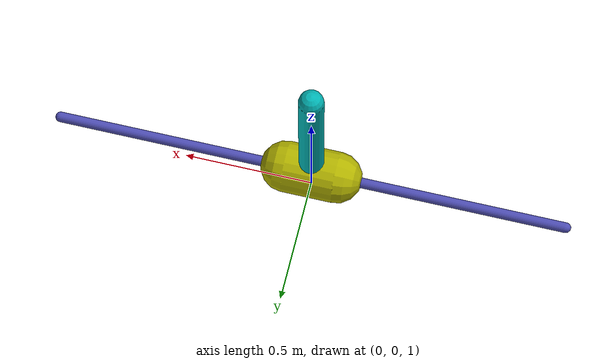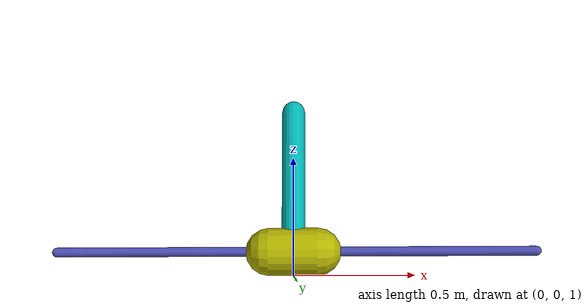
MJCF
<mujoco model="inverted pendulum">
	<compiler inertiafromgeom="true"/>
	<default>
		<joint armature="0" damping="1" limited="true"/>
		<geom contype="0" friction="1 0.1 0.1" rgba="0.7 0.7 0 1"/>
		<tendon/>
	</default>
	<option gravity="0 0 -9.81" integrator="RK4" timestep="0.02"/>
	<size nstack="3000"/>
	<worldbody>
		<!--geom name="ground" type="plane" pos="0 0 0" /-->
		<geom name="rail" pos="0 0 1.1" quat="0.707 0 0.707 0" rgba="0.3 0.3 0.7 1" size="0.02 1" type="capsule"/>
		<body name="cart" pos="0 0 1.1">
			<joint axis="1 0 0" limited="true" name="slider" pos="0 0 0." range="-1 1" type="slide"/>
			<geom name="cart" pos="0 0 0." quat="0.707 0 0.707 0" size="0.1 0.1" type="capsule"/>
			<body name="pole" pos="0 0 0.">
				<joint axis="0 1 0" name="hinge" pos="0 0 0." limited="false" range="-90 90" type="hinge"/>
				<geom fromto="0 0 0 0.001 0 0.6" name="cpole" rgba="0 0.7 0.7 1" size="0.049 0.3" type="capsule"/>
			</body>
		</body>
	</worldbody>
	<actuator>
		<motor name="slide" joint="slider" gear="1" ctrllimited="true" ctrlrange="-1 1" />
	</actuator>
</mujoco>
